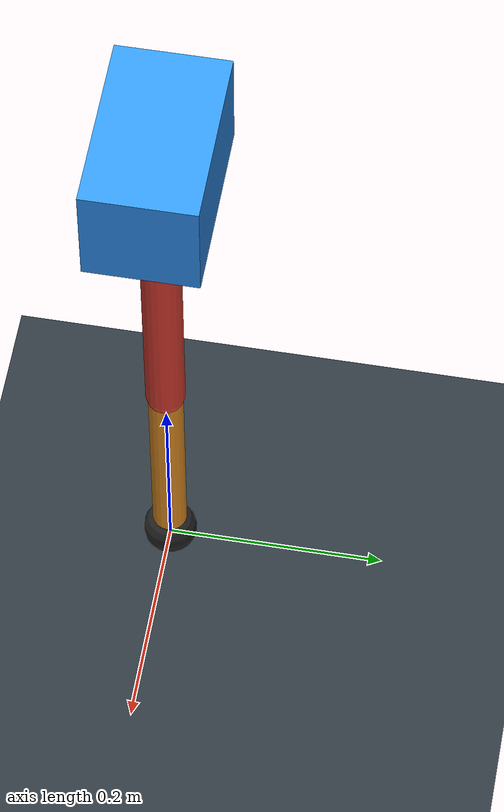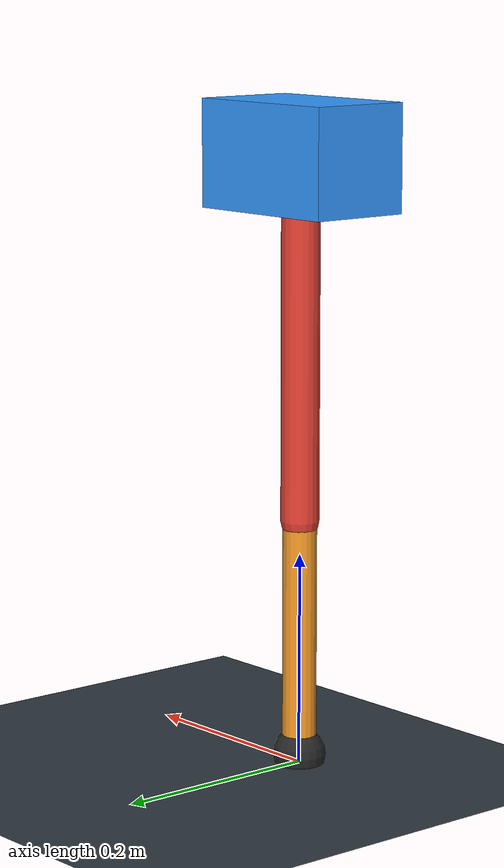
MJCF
<mujoco model="single_axis_two_bar">
  <compiler angle="radian" inertiafromgeom="true"/>
  <option timestep="0.001" integrator="implicitfast" gravity="0 0 -9.81"/>
  <default>
    <joint damping="0.08"/>
    <geom friction="1.2 0.01 0.0001" condim="3"/>
  </default>
  <worldbody>
    <geom name="floor" type="plane" size="5 5 0.1" rgba="0.18 0.22 0.25 1"/>
    <body name="carriage" pos="0 0 0.5702738956039595">
      <joint name="pole_slide" type="slide" axis="0 0 1"/>
      <geom name="payload" type="box" size="0.08 0.05 0.05" mass="2.320709875105739" rgba="0.2 0.6 1 1"/>
      <body name="thigh" pos="0 0 0">
        <joint name="hip" type="hinge" axis="0 1 0"/>
        <geom name="thigh_link" type="capsule" fromto="0 0 0 0 0 -0.3379927038550229" size="0.018" mass="0.24082426767624154" rgba="0.9 0.25 0.2 1"/>
        <body name="shank" pos="0 0 -0.3379927038550229">
          <joint name="knee" type="hinge" axis="0 1 0"/>
          <geom name="shank_link" type="capsule" fromto="0 0 0 0 0 -0.22414533285008997" size="0.016" mass="0.15970651147494624" rgba="0.95 0.6 0.15 1"/>
          <geom name="foot" type="sphere" pos="0 0 -0.22414533285008997" size="0.025" mass="0.03" rgba="0.15 0.15 0.15 1"/>
          <site name="toe" pos="0 0 -0.22414533285008997" size="0.008"/>
        </body>
      </body>
    </body>
  </worldbody>
  <actuator>
    <motor name="hip_motor" joint="hip" ctrlrange="-14.670483436087268 14.670483436087268"/>
    <motor name="knee_motor" joint="knee" ctrlrange="-52.773297005270095 52.773297005270095"/>
  </actuator>
</mujoco>
